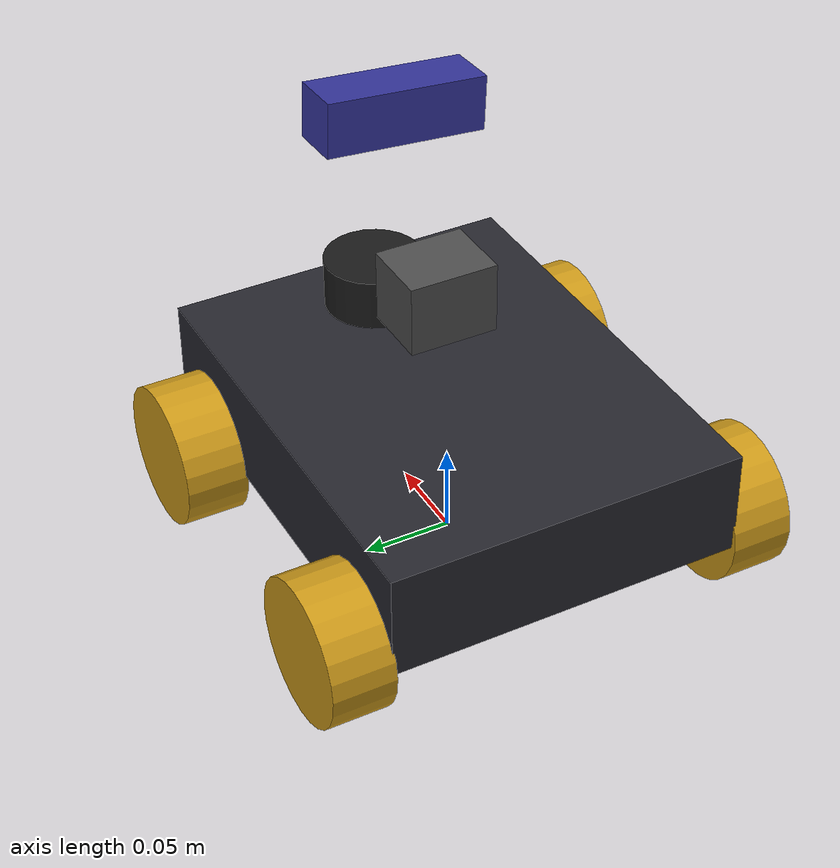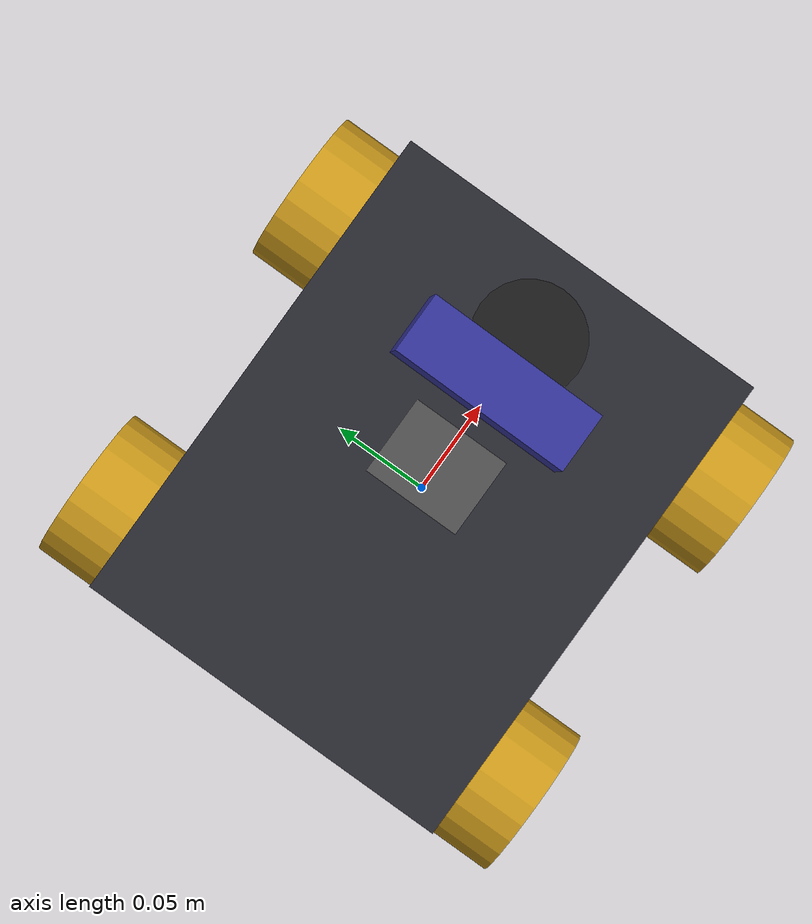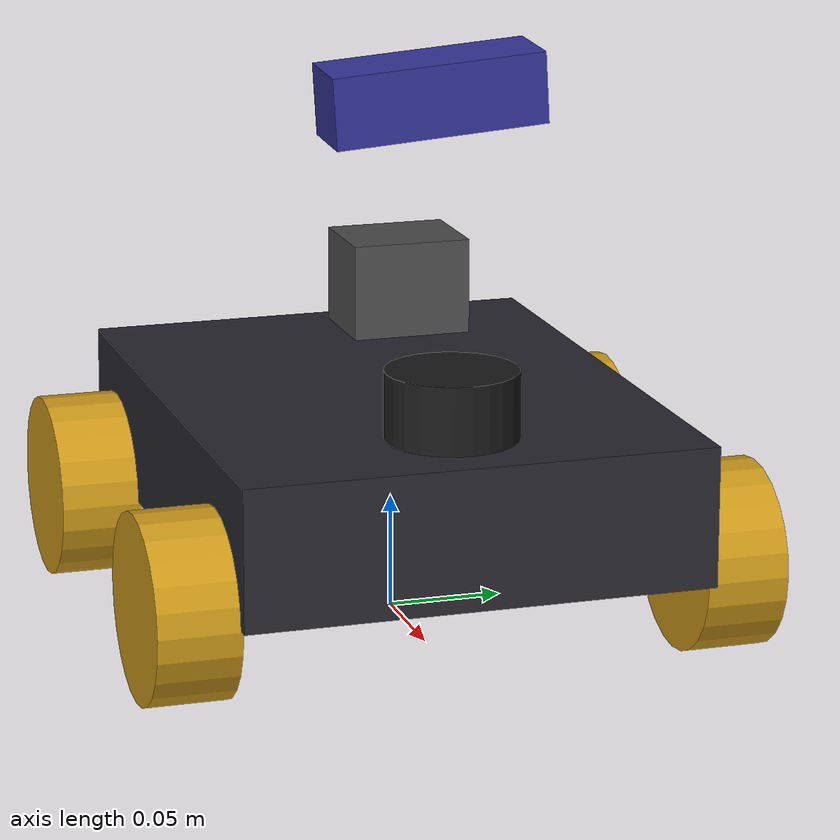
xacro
<?xml version="1.0"?>
<!-- Frames copied from vendor yeahbot_c21_pi.urdf. lidar yaw is the vendor nominal (pi);
     verify against the real scan in P2 and override with lidar_yaw. -->
<robot name="c21" xmlns:xacro="http://www.ros.org/wiki/xacro">
  <xacro:arg name="lidar_yaw" default="3.14159265"/>
  <xacro:macro name="box_link" params="name x y z rgba">
    <link name="${name}">
      <visual><geometry><box size="${x} ${y} ${z}"/></geometry>
        <material name="${name}_mat"><color rgba="${rgba}"/></material></visual>
    </link>
  </xacro:macro>

  <link name="base_footprint"/>
  <link name="base_link">
    <visual><origin xyz="0 0 0.07"/><geometry><box size="0.26 0.2 0.06"/></geometry>
      <material name="body"><color rgba="0.15 0.15 0.18 1"/></material></visual>
    <collision><origin xyz="0 0 0.07"/><geometry><box size="0.30 0.28 0.12"/></geometry></collision>
  </link>
  <joint name="base_joint" type="fixed"><parent link="base_footprint"/><child link="base_link"/></joint>

  <link name="imu_link"/>
  <joint name="imu_joint" type="fixed"><parent link="base_link"/><child link="imu_link"/>
    <origin xyz="-0.0531 0.0196 0.1060" rpy="0 0 0"/></joint>

  <link name="lidar_link">
    <visual><geometry><cylinder radius="0.028" length="0.04"/></geometry>
      <material name="lidar"><color rgba="0.1 0.1 0.1 1"/></material></visual>
  </link>
  <joint name="lidar_joint" type="fixed"><parent link="base_link"/><child link="lidar_link"/>
    <origin xyz="0.0853 -0.0001 0.1089" rpy="0 0 $(arg lidar_yaw)"/></joint>

  <xacro:box_link name="arm_0_link" x="0.04" y="0.05" z="0.04" rgba="0.3 0.3 0.3 1"/>
  <joint name="arm_0_joint" type="revolute"><parent link="base_link"/><child link="arm_0_link"/>
    <origin xyz="0.0112 0 0.1493" rpy="0 0 0"/><axis xyz="0 0 -1"/>
    <limit lower="-0.785" upper="0.785" effort="1" velocity="1"/></joint>

  <xacro:box_link name="camera_link" x="0.03" y="0.09" z="0.03" rgba="0.2 0.2 0.6 1"/>
  <joint name="camera_joint" type="fixed"><parent link="arm_0_link"/><child link="camera_link"/>
    <!-- tilt + height fitted to the floor seen in the depth image (2026-11-12, gimbal at 0):
         the camera looks 2.8 deg down, 4.2 deg rolled and sits 2 cm higher than the CAD value 0.0681 -->
    <origin xyz="0.0441 0.0002 0.0880" rpy="0.074 0.049 0"/></joint>

  <xacro:macro name="wheel" params="name x y">
    <link name="wheel_${name}_link">
      <visual><origin rpy="1.5708 0 0"/><geometry><cylinder radius="0.04" length="0.035"/></geometry>
        <material name="wheel"><color rgba="0.8 0.6 0.1 1"/></material></visual>
    </link>
    <joint name="wheel_${name}_joint" type="fixed"><parent link="base_link"/><child link="wheel_${name}_link"/>
      <origin xyz="${x} ${y} 0.0393"/></joint>
  </xacro:macro>
  <xacro:wheel name="lf" x="0.0848" y="0.1163"/>
  <xacro:wheel name="rf" x="0.0848" y="-0.1163"/>
  <xacro:wheel name="lb" x="-0.0932" y="0.1163"/>
  <xacro:wheel name="rb" x="-0.0932" y="-0.1163"/>
</robot>
